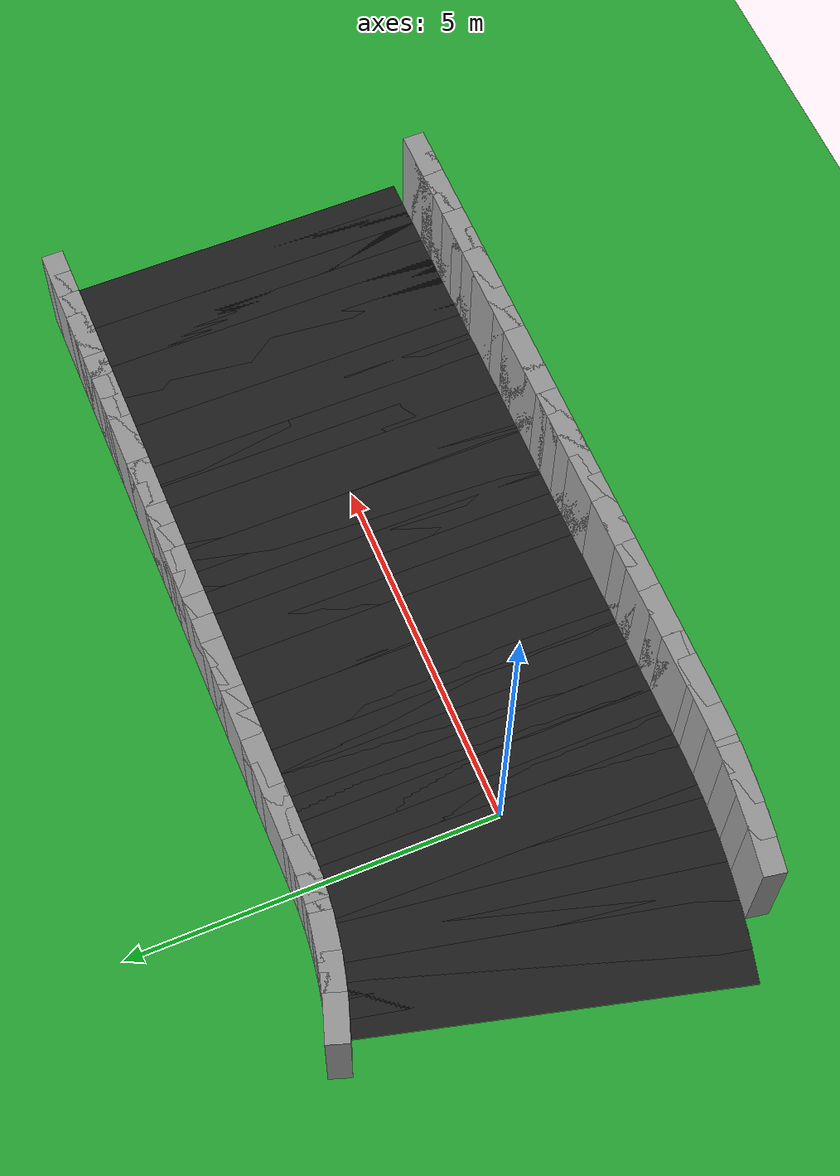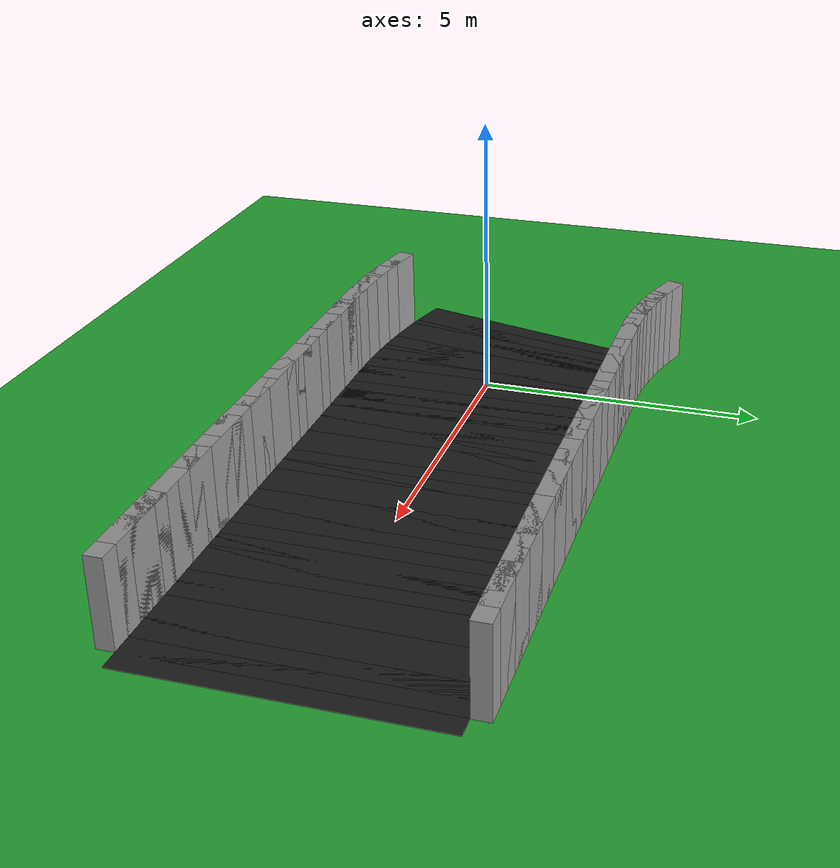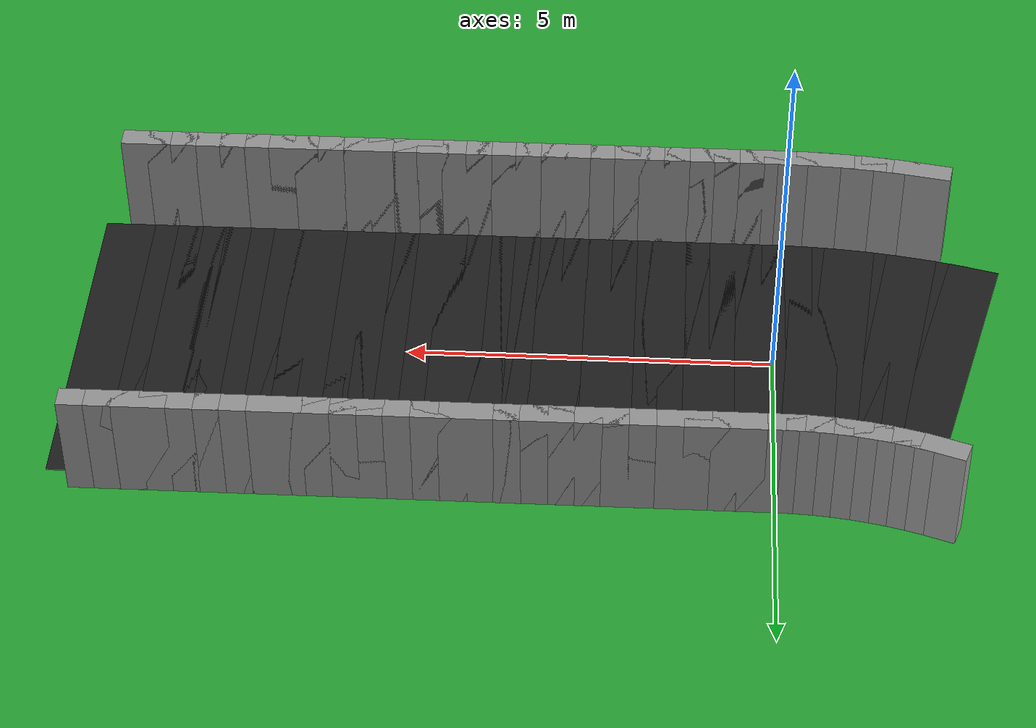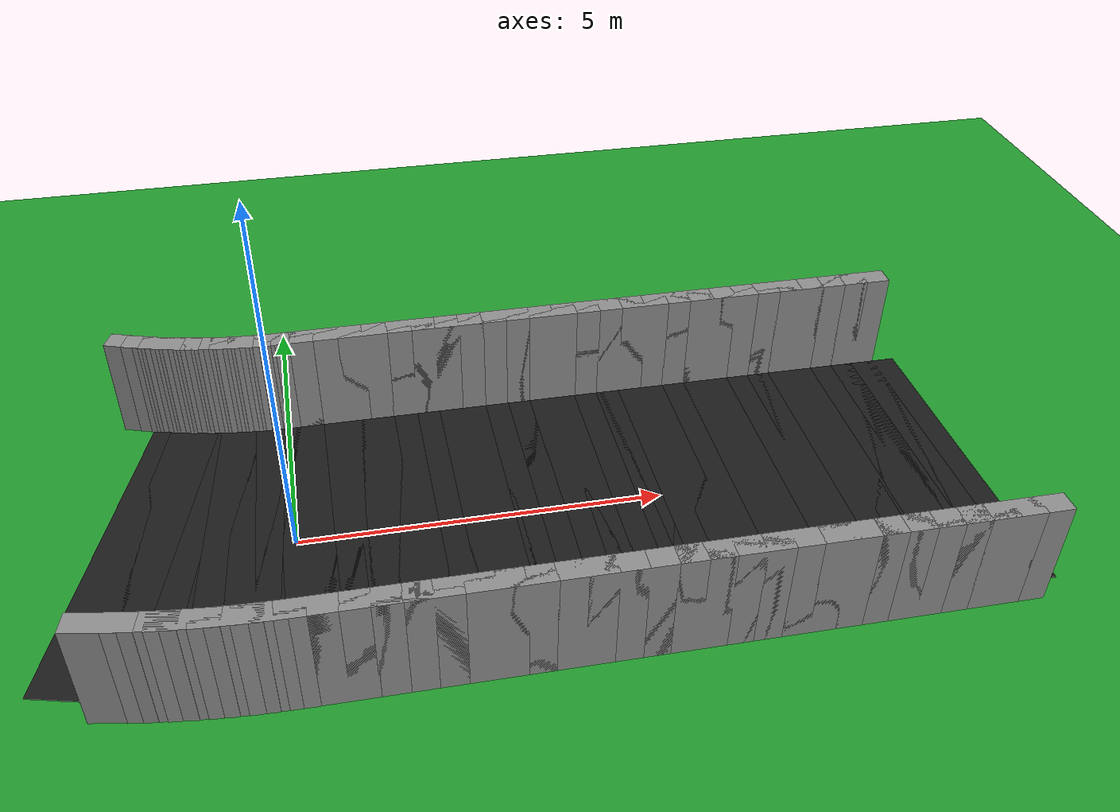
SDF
<sdf version="1.6">
 <world name="loop_stadium">
  <include><uri>model://sun</uri></include>
  <model name="ground_plane">
   <static>true</static>
   <link name="link">
    <collision name="collision">
     <surface><friction><ode><mu>100</mu><mu2>50</mu2></ode></friction></surface>
     <geometry><plane><normal>0 0 1</normal><size>120 120</size></plane></geometry>
    </collision>
    <visual name="visual">
     <geometry><plane><normal>0 0 1</normal><size>120 120</size></plane></geometry>
     <material>
      <script><uri>file://media/materials/scripts/gazebo.material</uri><name>Gazebo/Green</name></script>
     </material>
    </visual>
   </link>
  </model>
  <model name="asphalt_0">
   <static>true</static>
   <pose>0.174 0.000 0.005 0 0 0.00000</pose>
   <link name="link">
    <visual name="visual">
     <geometry><box><size>0.708 5.000 0.010</size></box></geometry>
     <material>
      <script><uri>file://media/materials/scripts/gazebo.material</uri><name>Gazebo/Black</name></script>
     </material>
    </visual>
   </link>
  </model>
  <model name="curbL_0">
   <static>true</static>
   <pose>0.174 2.650 0.750 0 0 0.00000</pose>
   <link name="link">
    <collision name="collision"><geometry><box><size>0.708 0.300 1.500</size></box></geometry></collision>
    <visual name="visual">
     <geometry><box><size>0.708 0.300 1.500</size></box></geometry>
     <material>
      <script><uri>file://media/materials/scripts/gazebo.material</uri><name>Gazebo/Grey</name></script>
     </material>
    </visual>
   </link>
  </model>
  <model name="curbR_0">
   <static>true</static>
   <pose>0.174 -2.650 0.750 0 0 0.00000</pose>
   <link name="link">
    <collision name="collision"><geometry><box><size>0.708 0.300 1.500</size></box></geometry></collision>
    <visual name="visual">
     <geometry><box><size>0.708 0.300 1.500</size></box></geometry>
     <material>
      <script><uri>file://media/materials/scripts/gazebo.material</uri><name>Gazebo/Grey</name></script>
     </material>
    </visual>
   </link>
  </model>
  <model name="asphalt_1">
   <static>true</static>
   <pose>0.522 0.000 0.005 0 0 0.00000</pose>
   <link name="link">
    <visual name="visual">
     <geometry><box><size>0.708 5.000 0.010</size></box></geometry>
     <material>
      <script><uri>file://media/materials/scripts/gazebo.material</uri><name>Gazebo/Black</name></script>
     </material>
    </visual>
   </link>
  </model>
  <model name="curbL_1">
   <static>true</static>
   <pose>0.522 2.650 0.750 0 0 0.00000</pose>
   <link name="link">
    <collision name="collision"><geometry><box><size>0.708 0.300 1.500</size></box></geometry></collision>
    <visual name="visual">
     <geometry><box><size>0.708 0.300 1.500</size></box></geometry>
     <material>
      <script><uri>file://media/materials/scripts/gazebo.material</uri><name>Gazebo/Grey</name></script>
     </material>
    </visual>
   </link>
  </model>
  <model name="curbR_1">
   <static>true</static>
   <pose>0.522 -2.650 0.750 0 0 0.00000</pose>
   <link name="link">
    <collision name="collision"><geometry><box><size>0.708 0.300 1.500</size></box></geometry></collision>
    <visual name="visual">
     <geometry><box><size>0.708 0.300 1.500</size></box></geometry>
     <material>
      <script><uri>file://media/materials/scripts/gazebo.material</uri><name>Gazebo/Grey</name></script>
     </material>
    </visual>
   </link>
  </model>
  <model name="asphalt_2">
   <static>true</static>
   <pose>0.870 0.000 0.005 0 0 0.00000</pose>
   <link name="link">
    <visual name="visual">
     <geometry><box><size>0.708 5.000 0.010</size></box></geometry>
     <material>
      <script><uri>file://media/materials/scripts/gazebo.material</uri><name>Gazebo/Black</name></script>
     </material>
    </visual>
   </link>
  </model>
  <model name="curbL_2">
   <static>true</static>
   <pose>0.870 2.650 0.750 0 0 0.00000</pose>
   <link name="link">
    <collision name="collision"><geometry><box><size>0.708 0.300 1.500</size></box></geometry></collision>
    <visual name="visual">
     <geometry><box><size>0.708 0.300 1.500</size></box></geometry>
     <material>
      <script><uri>file://media/materials/scripts/gazebo.material</uri><name>Gazebo/Grey</name></script>
     </material>
    </visual>
   </link>
  </model>
  <model name="curbR_2">
   <static>true</static>
   <pose>0.870 -2.650 0.750 0 0 0.00000</pose>
   <link name="link">
    <collision name="collision"><geometry><box><size>0.708 0.300 1.500</size></box></geometry></collision>
    <visual name="visual">
     <geometry><box><size>0.708 0.300 1.500</size></box></geometry>
     <material>
      <script><uri>file://media/materials/scripts/gazebo.material</uri><name>Gazebo/Grey</name></script>
     </material>
    </visual>
   </link>
  </model>
  <model name="asphalt_3">
   <static>true</static>
   <pose>1.217 0.000 0.005 0 0 0.00000</pose>
   <link name="link">
    <visual name="visual">
     <geometry><box><size>0.708 5.000 0.010</size></box></geometry>
     <material>
      <script><uri>file://media/materials/scripts/gazebo.material</uri><name>Gazebo/Black</name></script>
     </material>
    </visual>
   </link>
  </model>
  <model name="curbL_3">
   <static>true</static>
   <pose>1.217 2.650 0.750 0 0 0.00000</pose>
   <link name="link">
    <collision name="collision"><geometry><box><size>0.708 0.300 1.500</size></box></geometry></collision>
    <visual name="visual">
     <geometry><box><size>0.708 0.300 1.500</size></box></geometry>
     <material>
      <script><uri>file://media/materials/scripts/gazebo.material</uri><name>Gazebo/Grey</name></script>
     </material>
    </visual>
   </link>
  </model>
  <model name="curbR_3">
   <static>true</static>
   <pose>1.217 -2.650 0.750 0 0 0.00000</pose>
   <link name="link">
    <collision name="collision"><geometry><box><size>0.708 0.300 1.500</size></box></geometry></collision>
    <visual name="visual">
     <geometry><box><size>0.708 0.300 1.500</size></box></geometry>
     <material>
      <script><uri>file://media/materials/scripts/gazebo.material</uri><name>Gazebo/Grey</name></script>
     </material>
    </visual>
   </link>
  </model>
  <model name="asphalt_4">
   <static>true</static>
   <pose>1.565 0.000 0.005 0 0 0.00000</pose>
   <link name="link">
    <visual name="visual">
     <geometry><box><size>0.708 5.000 0.010</size></box></geometry>
     <material>
      <script><uri>file://media/materials/scripts/gazebo.material</uri><name>Gazebo/Black</name></script>
     </material>
    </visual>
   </link>
  </model>
  <model name="curbL_4">
   <static>true</static>
   <pose>1.565 2.650 0.750 0 0 0.00000</pose>
   <link name="link">
    <collision name="collision"><geometry><box><size>0.708 0.300 1.500</size></box></geometry></collision>
    <visual name="visual">
     <geometry><box><size>0.708 0.300 1.500</size></box></geometry>
     <material>
      <script><uri>file://media/materials/scripts/gazebo.material</uri><name>Gazebo/Grey</name></script>
     </material>
    </visual>
   </link>
  </model>
  <model name="curbR_4">
   <static>true</static>
   <pose>1.565 -2.650 0.750 0 0 0.00000</pose>
   <link name="link">
    <collision name="collision"><geometry><box><size>0.708 0.300 1.500</size></box></geometry></collision>
    <visual name="visual">
     <geometry><box><size>0.708 0.300 1.500</size></box></geometry>
     <material>
      <script><uri>file://media/materials/scripts/gazebo.material</uri><name>Gazebo/Grey</name></script>
     </material>
    </visual>
   </link>
  </model>
  <model name="asphalt_5">
   <static>true</static>
   <pose>1.913 0.000 0.005 0 0 0.00000</pose>
   <link name="link">
    <visual name="visual">
     <geometry><box><size>0.708 5.000 0.010</size></box></geometry>
     <material>
      <script><uri>file://media/materials/scripts/gazebo.material</uri><name>Gazebo/Black</name></script>
     </material>
    </visual>
   </link>
  </model>
  <model name="curbL_5">
   <static>true</static>
   <pose>1.913 2.650 0.750 0 0 0.00000</pose>
   <link name="link">
    <collision name="collision"><geometry><box><size>0.708 0.300 1.500</size></box></geometry></collision>
    <visual name="visual">
     <geometry><box><size>0.708 0.300 1.500</size></box></geometry>
     <material>
      <script><uri>file://media/materials/scripts/gazebo.material</uri><name>Gazebo/Grey</name></script>
     </material>
    </visual>
   </link>
  </model>
  <model name="curbR_5">
   <static>true</static>
   <pose>1.913 -2.650 0.750 0 0 0.00000</pose>
   <link name="link">
    <collision name="collision"><geometry><box><size>0.708 0.300 1.500</size></box></geometry></collision>
    <visual name="visual">
     <geometry><box><size>0.708 0.300 1.500</size></box></geometry>
     <material>
      <script><uri>file://media/materials/scripts/gazebo.material</uri><name>Gazebo/Grey</name></script>
     </material>
    </visual>
   </link>
  </model>
  <model name="asphalt_6">
   <static>true</static>
   <pose>2.261 0.000 0.005 0 0 0.00000</pose>
   <link name="link">
    <visual name="visual">
     <geometry><box><size>0.708 5.000 0.010</size></box></geometry>
     <material>
      <script><uri>file://media/materials/scripts/gazebo.material</uri><name>Gazebo/Black</name></script>
     </material>
    </visual>
   </link>
  </model>
  <model name="curbL_6">
   <static>true</static>
   <pose>2.261 2.650 0.750 0 0 0.00000</pose>
   <link name="link">
    <collision name="collision"><geometry><box><size>0.708 0.300 1.500</size></box></geometry></collision>
    <visual name="visual">
     <geometry><box><size>0.708 0.300 1.500</size></box></geometry>
     <material>
      <script><uri>file://media/materials/scripts/gazebo.material</uri><name>Gazebo/Grey</name></script>
     </material>
    </visual>
   </link>
  </model>
  <model name="curbR_6">
   <static>true</static>
   <pose>2.261 -2.650 0.750 0 0 0.00000</pose>
   <link name="link">
    <collision name="collision"><geometry><box><size>0.708 0.300 1.500</size></box></geometry></collision>
    <visual name="visual">
     <geometry><box><size>0.708 0.300 1.500</size></box></geometry>
     <material>
      <script><uri>file://media/materials/scripts/gazebo.material</uri><name>Gazebo/Grey</name></script>
     </material>
    </visual>
   </link>
  </model>
  <model name="asphalt_7">
   <static>true</static>
   <pose>2.609 0.000 0.005 0 0 0.00000</pose>
   <link name="link">
    <visual name="visual">
     <geometry><box><size>0.708 5.000 0.010</size></box></geometry>
     <material>
      <script><uri>file://media/materials/scripts/gazebo.material</uri><name>Gazebo/Black</name></script>
     </material>
    </visual>
   </link>
  </model>
  <model name="curbL_7">
   <static>true</static>
   <pose>2.609 2.650 0.750 0 0 0.00000</pose>
   <link name="link">
    <collision name="collision"><geometry><box><size>0.708 0.300 1.500</size></box></geometry></collision>
    <visual name="visual">
     <geometry><box><size>0.708 0.300 1.500</size></box></geometry>
     <material>
      <script><uri>file://media/materials/scripts/gazebo.material</uri><name>Gazebo/Grey</name></script>
     </material>
    </visual>
   </link>
  </model>
  <model name="curbR_7">
   <static>true</static>
   <pose>2.609 -2.650 0.750 0 0 0.00000</pose>
   <link name="link">
    <collision name="collision"><geometry><box><size>0.708 0.300 1.500</size></box></geometry></collision>
    <visual name="visual">
     <geometry><box><size>0.708 0.300 1.500</size></box></geometry>
     <material>
      <script><uri>file://media/materials/scripts/gazebo.material</uri><name>Gazebo/Grey</name></script>
     </material>
    </visual>
   </link>
  </model>
  <model name="asphalt_8">
   <static>true</static>
   <pose>2.957 0.000 0.005 0 0 0.00000</pose>
   <link name="link">
    <visual name="visual">
     <geometry><box><size>0.708 5.000 0.010</size></box></geometry>
     <material>
      <script><uri>file://media/materials/scripts/gazebo.material</uri><name>Gazebo/Black</name></script>
     </material>
    </visual>
   </link>
  </model>
  <model name="curbL_8">
   <static>true</static>
   <pose>2.957 2.650 0.750 0 0 0.00000</pose>
   <link name="link">
    <collision name="collision"><geometry><box><size>0.708 0.300 1.500</size></box></geometry></collision>
    <visual name="visual">
     <geometry><box><size>0.708 0.300 1.500</size></box></geometry>
     <material>
      <script><uri>file://media/materials/scripts/gazebo.material</uri><name>Gazebo/Grey</name></script>
     </material>
    </visual>
   </link>
  </model>
  <model name="curbR_8">
   <static>true</static>
   <pose>2.957 -2.650 0.750 0 0 0.00000</pose>
   <link name="link">
    <collision name="collision"><geometry><box><size>0.708 0.300 1.500</size></box></geometry></collision>
    <visual name="visual">
     <geometry><box><size>0.708 0.300 1.500</size></box></geometry>
     <material>
      <script><uri>file://media/materials/scripts/gazebo.material</uri><name>Gazebo/Grey</name></script>
     </material>
    </visual>
   </link>
  </model>
  <model name="asphalt_9">
   <static>true</static>
   <pose>3.304 0.000 0.005 0 0 0.00000</pose>
   <link name="link">
    <visual name="visual">
     <geometry><box><size>0.708 5.000 0.010</size></box></geometry>
     <material>
      <script><uri>file://media/materials/scripts/gazebo.material</uri><name>Gazebo/Black</name></script>
     </material>
    </visual>
   </link>
  </model>
  <model name="curbL_9">
   <static>true</static>
   <pose>3.304 2.650 0.750 0 0 0.00000</pose>
   <link name="link">
    <collision name="collision"><geometry><box><size>0.708 0.300 1.500</size></box></geometry></collision>
    <visual name="visual">
     <geometry><box><size>0.708 0.300 1.500</size></box></geometry>
     <material>
      <script><uri>file://media/materials/scripts/gazebo.material</uri><name>Gazebo/Grey</name></script>
     </material>
    </visual>
   </link>
  </model>
  <model name="curbR_9">
   <static>true</static>
   <pose>3.304 -2.650 0.750 0 0 0.00000</pose>
   <link name="link">
    <collision name="collision"><geometry><box><size>0.708 0.300 1.500</size></box></geometry></collision>
    <visual name="visual">
     <geometry><box><size>0.708 0.300 1.500</size></box></geometry>
     <material>
      <script><uri>file://media/materials/scripts/gazebo.material</uri><name>Gazebo/Grey</name></script>
     </material>
    </visual>
   </link>
  </model>
  <model name="asphalt_10">
   <static>true</static>
   <pose>3.652 0.000 0.005 0 0 0.00000</pose>
   <link name="link">
    <visual name="visual">
     <geometry><box><size>0.708 5.000 0.010</size></box></geometry>
     <material>
      <script><uri>file://media/materials/scripts/gazebo.material</uri><name>Gazebo/Black</name></script>
     </material>
    </visual>
   </link>
  </model>
  <model name="curbL_10">
   <static>true</static>
   <pose>3.652 2.650 0.750 0 0 0.00000</pose>
   <link name="link">
    <collision name="collision"><geometry><box><size>0.708 0.300 1.500</size></box></geometry></collision>
    <visual name="visual">
     <geometry><box><size>0.708 0.300 1.500</size></box></geometry>
     <material>
      <script><uri>file://media/materials/scripts/gazebo.material</uri><name>Gazebo/Grey</name></script>
     </material>
    </visual>
   </link>
  </model>
  <model name="curbR_10">
   <static>true</static>
   <pose>3.652 -2.650 0.750 0 0 0.00000</pose>
   <link name="link">
    <collision name="collision"><geometry><box><size>0.708 0.300 1.500</size></box></geometry></collision>
    <visual name="visual">
     <geometry><box><size>0.708 0.300 1.500</size></box></geometry>
     <material>
      <script><uri>file://media/materials/scripts/gazebo.material</uri><name>Gazebo/Grey</name></script>
     </material>
    </visual>
   </link>
  </model>
  <model name="asphalt_11">
   <static>true</static>
   <pose>4.000 0.000 0.005 0 0 0.00000</pose>
   <link name="link">
    <visual name="visual">
     <geometry><box><size>0.708 5.000 0.010</size></box></geometry>
     <material>
      <script><uri>file://media/materials/scripts/gazebo.material</uri><name>Gazebo/Black</name></script>
     </material>
    </visual>
   </link>
  </model>
  <model name="curbL_11">
   <static>true</static>
   <pose>4.000 2.650 0.750 0 0 0.00000</pose>
   <link name="link">
    <collision name="collision"><geometry><box><size>0.708 0.300 1.500</size></box></geometry></collision>
    <visual name="visual">
     <geometry><box><size>0.708 0.300 1.500</size></box></geometry>
     <material>
      <script><uri>file://media/materials/scripts/gazebo.material</uri><name>Gazebo/Grey</name></script>
     </material>
    </visual>
   </link>
  </model>
  <model name="curbR_11">
   <static>true</static>
   <pose>4.000 -2.650 0.750 0 0 0.00000</pose>
   <link name="link">
    <collision name="collision"><geometry><box><size>0.708 0.300 1.500</size></box></geometry></collision>
    <visual name="visual">
     <geometry><box><size>0.708 0.300 1.500</size></box></geometry>
     <material>
      <script><uri>file://media/materials/scripts/gazebo.material</uri><name>Gazebo/Grey</name></script>
     </material>
    </visual>
   </link>
  </model>
  <model name="asphalt_12">
   <static>true</static>
   <pose>4.348 0.000 0.005 0 0 0.00000</pose>
   <link name="link">
    <visual name="visual">
     <geometry><box><size>0.708 5.000 0.010</size></box></geometry>
     <material>
      <script><uri>file://media/materials/scripts/gazebo.material</uri><name>Gazebo/Black</name></script>
     </material>
    </visual>
   </link>
  </model>
  <model name="curbL_12">
   <static>true</static>
   <pose>4.348 2.650 0.750 0 0 0.00000</pose>
   <link name="link">
    <collision name="collision"><geometry><box><size>0.708 0.300 1.500</size></box></geometry></collision>
    <visual name="visual">
     <geometry><box><size>0.708 0.300 1.500</size></box></geometry>
     <material>
      <script><uri>file://media/materials/scripts/gazebo.material</uri><name>Gazebo/Grey</name></script>
     </material>
    </visual>
   </link>
  </model>
  <model name="curbR_12">
   <static>true</static>
   <pose>4.348 -2.650 0.750 0 0 0.00000</pose>
   <link name="link">
    <collision name="collision"><geometry><box><size>0.708 0.300 1.500</size></box></geometry></collision>
    <visual name="visual">
     <geometry><box><size>0.708 0.300 1.500</size></box></geometry>
     <material>
      <script><uri>file://media/materials/scripts/gazebo.material</uri><name>Gazebo/Grey</name></script>
     </material>
    </visual>
   </link>
  </model>
  <model name="asphalt_13">
   <static>true</static>
   <pose>4.696 0.000 0.005 0 0 0.00000</pose>
   <link name="link">
    <visual name="visual">
     <geometry><box><size>0.708 5.000 0.010</size></box></geometry>
     <material>
      <script><uri>file://media/materials/scripts/gazebo.material</uri><name>Gazebo/Black</name></script>
     </material>
    </visual>
   </link>
  </model>
  <model name="curbL_13">
   <static>true</static>
   <pose>4.696 2.650 0.750 0 0 0.00000</pose>
   <link name="link">
    <collision name="collision"><geometry><box><size>0.708 0.300 1.500</size></box></geometry></collision>
    <visual name="visual">
     <geometry><box><size>0.708 0.300 1.500</size></box></geometry>
     <material>
      <script><uri>file://media/materials/scripts/gazebo.material</uri><name>Gazebo/Grey</name></script>
     </material>
    </visual>
   </link>
  </model>
  <model name="curbR_13">
   <static>true</static>
   <pose>4.696 -2.650 0.750 0 0 0.00000</pose>
   <link name="link">
    <collision name="collision"><geometry><box><size>0.708 0.300 1.500</size></box></geometry></collision>
    <visual name="visual">
     <geometry><box><size>0.708 0.300 1.500</size></box></geometry>
     <material>
      <script><uri>file://media/materials/scripts/gazebo.material</uri><name>Gazebo/Grey</name></script>
     </material>
    </visual>
   </link>
  </model>
  <model name="asphalt_14">
   <static>true</static>
   <pose>5.043 0.000 0.005 0 0 0.00000</pose>
   <link name="link">
    <visual name="visual">
     <geometry><box><size>0.708 5.000 0.010</size></box></geometry>
     <material>
      <script><uri>file://media/materials/scripts/gazebo.material</uri><name>Gazebo/Black</name></script>
     </material>
    </visual>
   </link>
  </model>
  <model name="curbL_14">
   <static>true</static>
   <pose>5.043 2.650 0.750 0 0 0.00000</pose>
   <link name="link">
    <collision name="collision"><geometry><box><size>0.708 0.300 1.500</size></box></geometry></collision>
    <visual name="visual">
     <geometry><box><size>0.708 0.300 1.500</size></box></geometry>
     <material>
      <script><uri>file://media/materials/scripts/gazebo.material</uri><name>Gazebo/Grey</name></script>
     </material>
    </visual>
   </link>
  </model>
  <model name="curbR_14">
   <static>true</static>
   <pose>5.043 -2.650 0.750 0 0 0.00000</pose>
   <link name="link">
    <collision name="collision"><geometry><box><size>0.708 0.300 1.500</size></box></geometry></collision>
    <visual name="visual">
     <geometry><box><size>0.708 0.300 1.500</size></box></geometry>
     <material>
      <script><uri>file://media/materials/scripts/gazebo.material</uri><name>Gazebo/Grey</name></script>
     </material>
    </visual>
   </link>
  </model>
  <model name="asphalt_15">
   <static>true</static>
   <pose>5.391 0.000 0.005 0 0 0.00000</pose>
   <link name="link">
    <visual name="visual">
     <geometry><box><size>0.708 5.000 0.010</size></box></geometry>
     <material>
      <script><uri>file://media/materials/scripts/gazebo.material</uri><name>Gazebo/Black</name></script>
     </material>
    </visual>
   </link>
  </model>
  <model name="curbL_15">
   <static>true</static>
   <pose>5.391 2.650 0.750 0 0 0.00000</pose>
   <link name="link">
    <collision name="collision"><geometry><box><size>0.708 0.300 1.500</size></box></geometry></collision>
    <visual name="visual">
     <geometry><box><size>0.708 0.300 1.500</size></box></geometry>
     <material>
      <script><uri>file://media/materials/scripts/gazebo.material</uri><name>Gazebo/Grey</name></script>
     </material>
    </visual>
   </link>
  </model>
  <model name="curbR_15">
   <static>true</static>
   <pose>5.391 -2.650 0.750 0 0 0.00000</pose>
   <link name="link">
    <collision name="collision"><geometry><box><size>0.708 0.300 1.500</size></box></geometry></collision>
    <visual name="visual">
     <geometry><box><size>0.708 0.300 1.500</size></box></geometry>
     <material>
      <script><uri>file://media/materials/scripts/gazebo.material</uri><name>Gazebo/Grey</name></script>
     </material>
    </visual>
   </link>
  </model>
  <model name="asphalt_16">
   <static>true</static>
   <pose>5.739 0.000 0.005 0 0 0.00000</pose>
   <link name="link">
    <visual name="visual">
     <geometry><box><size>0.708 5.000 0.010</size></box></geometry>
     <material>
      <script><uri>file://media/materials/scripts/gazebo.material</uri><name>Gazebo/Black</name></script>
     </material>
    </visual>
   </link>
  </model>
  <model name="curbL_16">
   <static>true</static>
   <pose>5.739 2.650 0.750 0 0 0.00000</pose>
   <link name="link">
    <collision name="collision"><geometry><box><size>0.708 0.300 1.500</size></box></geometry></collision>
    <visual name="visual">
     <geometry><box><size>0.708 0.300 1.500</size></box></geometry>
     <material>
      <script><uri>file://media/materials/scripts/gazebo.material</uri><name>Gazebo/Grey</name></script>
     </material>
    </visual>
   </link>
  </model>
  <model name="curbR_16">
   <static>true</static>
   <pose>5.739 -2.650 0.750 0 0 0.00000</pose>
   <link name="link">
    <collision name="collision"><geometry><box><size>0.708 0.300 1.500</size></box></geometry></collision>
    <visual name="visual">
     <geometry><box><size>0.708 0.300 1.500</size></box></geometry>
     <material>
      <script><uri>file://media/materials/scripts/gazebo.material</uri><name>Gazebo/Grey</name></script>
     </material>
    </visual>
   </link>
  </model>
  <model name="asphalt_17">
   <static>true</static>
   <pose>6.087 0.000 0.005 0 0 0.00000</pose>
   <link name="link">
    <visual name="visual">
     <geometry><box><size>0.708 5.000 0.010</size></box></geometry>
     <material>
      <script><uri>file://media/materials/scripts/gazebo.material</uri><name>Gazebo/Black</name></script>
     </material>
    </visual>
   </link>
  </model>
  <model name="curbL_17">
   <static>true</static>
   <pose>6.087 2.650 0.750 0 0 0.00000</pose>
   <link name="link">
    <collision name="collision"><geometry><box><size>0.708 0.300 1.500</size></box></geometry></collision>
    <visual name="visual">
     <geometry><box><size>0.708 0.300 1.500</size></box></geometry>
     <material>
      <script><uri>file://media/materials/scripts/gazebo.material</uri><name>Gazebo/Grey</name></script>
     </material>
    </visual>
   </link>
  </model>
  <model name="curbR_17">
   <static>true</static>
   <pose>6.087 -2.650 0.750 0 0 0.00000</pose>
   <link name="link">
    <collision name="collision"><geometry><box><size>0.708 0.300 1.500</size></box></geometry></collision>
    <visual name="visual">
     <geometry><box><size>0.708 0.300 1.500</size></box></geometry>
     <material>
      <script><uri>file://media/materials/scripts/gazebo.material</uri><name>Gazebo/Grey</name></script>
     </material>
    </visual>
   </link>
  </model>
  <model name="asphalt_18">
   <static>true</static>
   <pose>6.435 0.000 0.005 0 0 0.00000</pose>
   <link name="link">
    <visual name="visual">
     <geometry><box><size>0.708 5.000 0.010</size></box></geometry>
     <material>
      <script><uri>file://media/materials/scripts/gazebo.material</uri><name>Gazebo/Black</name></script>
     </material>
    </visual>
   </link>
  </model>
  <model name="curbL_18">
   <static>true</static>
   <pose>6.435 2.650 0.750 0 0 0.00000</pose>
   <link name="link">
    <collision name="collision"><geometry><box><size>0.708 0.300 1.500</size></box></geometry></collision>
    <visual name="visual">
     <geometry><box><size>0.708 0.300 1.500</size></box></geometry>
     <material>
      <script><uri>file://media/materials/scripts/gazebo.material</uri><name>Gazebo/Grey</name></script>
     </material>
    </visual>
   </link>
  </model>
  <model name="curbR_18">
   <static>true</static>
   <pose>6.435 -2.650 0.750 0 0 0.00000</pose>
   <link name="link">
    <collision name="collision"><geometry><box><size>0.708 0.300 1.500</size></box></geometry></collision>
    <visual name="visual">
     <geometry><box><size>0.708 0.300 1.500</size></box></geometry>
     <material>
      <script><uri>file://media/materials/scripts/gazebo.material</uri><name>Gazebo/Grey</name></script>
     </material>
    </visual>
   </link>
  </model>
  <model name="asphalt_19">
   <static>true</static>
   <pose>6.783 0.000 0.005 0 0 0.00000</pose>
   <link name="link">
    <visual name="visual">
     <geometry><box><size>0.708 5.000 0.010</size></box></geometry>
     <material>
      <script><uri>file://media/materials/scripts/gazebo.material</uri><name>Gazebo/Black</name></script>
     </material>
    </visual>
   </link>
  </model>
  <model name="curbL_19">
   <static>true</static>
   <pose>6.783 2.650 0.750 0 0 0.00000</pose>
   <link name="link">
    <collision name="collision"><geometry><box><size>0.708 0.300 1.500</size></box></geometry></collision>
    <visual name="visual">
     <geometry><box><size>0.708 0.300 1.500</size></box></geometry>
     <material>
      <script><uri>file://media/materials/scripts/gazebo.material</uri><name>Gazebo/Grey</name></script>
     </material>
    </visual>
   </link>
  </model>
  <model name="curbR_19">
   <static>true</static>
   <pose>6.783 -2.650 0.750 0 0 0.00000</pose>
   <link name="link">
    <collision name="collision"><geometry><box><size>0.708 0.300 1.500</size></box></geometry></collision>
    <visual name="visual">
     <geometry><box><size>0.708 0.300 1.500</size></box></geometry>
     <material>
      <script><uri>file://media/materials/scripts/gazebo.material</uri><name>Gazebo/Grey</name></script>
     </material>
    </visual>
   </link>
  </model>
  <model name="asphalt_20">
   <static>true</static>
   <pose>7.130 0.000 0.005 0 0 0.00000</pose>
   <link name="link">
    <visual name="visual">
     <geometry><box><size>0.708 5.000 0.010</size></box></geometry>
     <material>
      <script><uri>file://media/materials/scripts/gazebo.material</uri><name>Gazebo/Black</name></script>
     </material>
    </visual>
   </link>
  </model>
  <model name="curbL_20">
   <static>true</static>
   <pose>7.130 2.650 0.750 0 0 0.00000</pose>
   <link name="link">
    <collision name="collision"><geometry><box><size>0.708 0.300 1.500</size></box></geometry></collision>
    <visual name="visual">
     <geometry><box><size>0.708 0.300 1.500</size></box></geometry>
     <material>
      <script><uri>file://media/materials/scripts/gazebo.material</uri><name>Gazebo/Grey</name></script>
     </material>
    </visual>
   </link>
  </model>
  <model name="curbR_20">
   <static>true</static>
   <pose>7.130 -2.650 0.750 0 0 0.00000</pose>
   <link name="link">
    <collision name="collision"><geometry><box><size>0.708 0.300 1.500</size></box></geometry></collision>
    <visual name="visual">
     <geometry><box><size>0.708 0.300 1.500</size></box></geometry>
     <material>
      <script><uri>file://media/materials/scripts/gazebo.material</uri><name>Gazebo/Grey</name></script>
     </material>
    </visual>
   </link>
  </model>
  <model name="asphalt_21">
   <static>true</static>
   <pose>7.478 0.000 0.005 0 0 0.00000</pose>
   <link name="link">
    <visual name="visual">
     <geometry><box><size>0.708 5.000 0.010</size></box></geometry>
     <material>
      <script><uri>file://media/materials/scripts/gazebo.material</uri><name>Gazebo/Black</name></script>
     </material>
    </visual>
   </link>
  </model>
  <model name="curbL_21">
   <static>true</static>
   <pose>7.478 2.650 0.750 0 0 0.00000</pose>
   <link name="link">
    <collision name="collision"><geometry><box><size>0.708 0.300 1.500</size></box></geometry></collision>
    <visual name="visual">
     <geometry><box><size>0.708 0.300 1.500</size></box></geometry>
     <material>
      <script><uri>file://media/materials/scripts/gazebo.material</uri><name>Gazebo/Grey</name></script>
     </material>
    </visual>
   </link>
  </model>
  <model name="curbR_21">
   <static>true</static>
   <pose>7.478 -2.650 0.750 0 0 0.00000</pose>
   <link name="link">
    <collision name="collision"><geometry><box><size>0.708 0.300 1.500</size></box></geometry></collision>
    <visual name="visual">
     <geometry><box><size>0.708 0.300 1.500</size></box></geometry>
     <material>
      <script><uri>file://media/materials/scripts/gazebo.material</uri><name>Gazebo/Grey</name></script>
     </material>
    </visual>
   </link>
  </model>
  <model name="asphalt_22">
   <static>true</static>
   <pose>7.826 0.000 0.005 0 0 0.00000</pose>
   <link name="link">
    <visual name="visual">
     <geometry><box><size>0.708 5.000 0.010</size></box></geometry>
     <material>
      <script><uri>file://media/materials/scripts/gazebo.material</uri><name>Gazebo/Black</name></script>
     </material>
    </visual>
   </link>
  </model>
  <model name="curbL_22">
   <static>true</static>
   <pose>7.826 2.650 0.750 0 0 0.00000</pose>
   <link name="link">
    <collision name="collision"><geometry><box><size>0.708 0.300 1.500</size></box></geometry></collision>
    <visual name="visual">
     <geometry><box><size>0.708 0.300 1.500</size></box></geometry>
     <material>
      <script><uri>file://media/materials/scripts/gazebo.material</uri><name>Gazebo/Grey</name></script>
     </material>
    </visual>
   </link>
  </model>
  <model name="curbR_22">
   <static>true</static>
   <pose>7.826 -2.650 0.750 0 0 0.00000</pose>
   <link name="link">
    <collision name="collision"><geometry><box><size>0.708 0.300 1.500</size></box></geometry></collision>
    <visual name="visual">
     <geometry><box><size>0.708 0.300 1.500</size></box></geometry>
     <material>
      <script><uri>file://media/materials/scripts/gazebo.material</uri><name>Gazebo/Grey</name></script>
     </material>
    </visual>
   </link>
  </model>
  <model name="asphalt_23">
   <static>true</static>
   <pose>8.174 0.000 0.005 0 0 0.00000</pose>
   <link name="link">
    <visual name="visual">
     <geometry><box><size>0.708 5.000 0.010</size></box></geometry>
     <material>
      <script><uri>file://media/materials/scripts/gazebo.material</uri><name>Gazebo/Black</name></script>
     </material>
    </visual>
   </link>
  </model>
  <model name="curbL_23">
   <static>true</static>
   <pose>8.174 2.650 0.750 0 0 0.00000</pose>
   <link name="link">
    <collision name="collision"><geometry><box><size>0.708 0.300 1.500</size></box></geometry></collision>
    <visual name="visual">
     <geometry><box><size>0.708 0.300 1.500</size></box></geometry>
     <material>
      <script><uri>file://media/materials/scripts/gazebo.material</uri><name>Gazebo/Grey</name></script>
     </material>
    </visual>
   </link>
  </model>
  <model name="curbR_23">
   <static>true</static>
   <pose>8.174 -2.650 0.750 0 0 0.00000</pose>
   <link name="link">
    <collision name="collision"><geometry><box><size>0.708 0.300 1.500</size></box></geometry></collision>
    <visual name="visual">
     <geometry><box><size>0.708 0.300 1.500</size></box></geometry>
     <material>
      <script><uri>file://media/materials/scripts/gazebo.material</uri><name>Gazebo/Grey</name></script>
     </material>
    </visual>
   </link>
  </model>
  <model name="asphalt_24">
   <static>true</static>
   <pose>8.522 0.000 0.005 0 0 0.00000</pose>
   <link name="link">
    <visual name="visual">
     <geometry><box><size>0.708 5.000 0.010</size></box></geometry>
     <material>
      <script><uri>file://media/materials/scripts/gazebo.material</uri><name>Gazebo/Black</name></script>
     </material>
    </visual>
   </link>
  </model>
  <model name="curbL_24">
   <static>true</static>
   <pose>8.522 2.650 0.750 0 0 0.00000</pose>
   <link name="link">
    <collision name="collision"><geometry><box><size>0.708 0.300 1.500</size></box></geometry></collision>
    <visual name="visual">
     <geometry><box><size>0.708 0.300 1.500</size></box></geometry>
     <material>
      <script><uri>file://media/materials/scripts/gazebo.material</uri><name>Gazebo/Grey</name></script>
     </material>
    </visual>
   </link>
  </model>
  <model name="curbR_24">
   <static>true</static>
   <pose>8.522 -2.650 0.750 0 0 0.00000</pose>
   <link name="link">
    <collision name="collision"><geometry><box><size>0.708 0.300 1.500</size></box></geometry></collision>
    <visual name="visual">
     <geometry><box><size>0.708 0.300 1.500</size></box></geometry>
     <material>
      <script><uri>file://media/materials/scripts/gazebo.material</uri><name>Gazebo/Grey</name></script>
     </material>
    </visual>
   </link>
  </model>
  <model name="asphalt_25">
   <static>true</static>
   <pose>8.870 0.000 0.005 0 0 0.00000</pose>
   <link name="link">
    <visual name="visual">
     <geometry><box><size>0.708 5.000 0.010</size></box></geometry>
     <material>
      <script><uri>file://media/materials/scripts/gazebo.material</uri><name>Gazebo/Black</name></script>
     </material>
    </visual>
   </link>
  </model>
  <model name="curbL_25">
   <static>true</static>
   <pose>8.870 2.650 0.750 0 0 0.00000</pose>
   <link name="link">
    <collision name="collision"><geometry><box><size>0.708 0.300 1.500</size></box></geometry></collision>
    <visual name="visual">
     <geometry><box><size>0.708 0.300 1.500</size></box></geometry>
     <material>
      <script><uri>file://media/materials/scripts/gazebo.material</uri><name>Gazebo/Grey</name></script>
     </material>
    </visual>
   </link>
  </model>
  <model name="curbR_25">
   <static>true</static>
   <pose>8.870 -2.650 0.750 0 0 0.00000</pose>
   <link name="link">
    <collision name="collision"><geometry><box><size>0.708 0.300 1.500</size></box></geometry></collision>
    <visual name="visual">
     <geometry><box><size>0.708 0.300 1.500</size></box></geometry>
     <material>
      <script><uri>file://media/materials/scripts/gazebo.material</uri><name>Gazebo/Grey</name></script>
     </material>
    </visual>
   </link>
  </model>
  <model name="asphalt_26">
   <static>true</static>
   <pose>9.217 0.000 0.005 0 0 0.00000</pose>
   <link name="link">
    <visual name="visual">
     <geometry><box><size>0.708 5.000 0.010</size></box></geometry>
     <material>
      <script><uri>file://media/materials/scripts/gazebo.material</uri><name>Gazebo/Black</name></script>
     </material>
    </visual>
   </link>
  </model>
  <model name="curbL_291">
   <static>true</static>
   <pose>-2.056 2.993 0.750 0 0 -0.32967</pose>
   <link name="link">
    <collision name="collision"><geometry><box><size>0.606 0.300 1.500</size></box></geometry></collision>
    <visual name="visual">
     <geometry><box><size>0.606 0.300 1.500</size></box></geometry>
     <material>
      <script><uri>file://media/materials/scripts/gazebo.material</uri><name>Gazebo/Grey</name></script>
     </material>
    </visual>
   </link>
  </model>
  <model name="curbL_292">
   <static>true</static>
   <pose>-1.821 2.918 0.750 0 0 -0.29089</pose>
   <link name="link">
    <collision name="collision"><geometry><box><size>0.606 0.300 1.500</size></box></geometry></collision>
    <visual name="visual">
     <geometry><box><size>0.606 0.300 1.500</size></box></geometry>
     <material>
      <script><uri>file://media/materials/scripts/gazebo.material</uri><name>Gazebo/Grey</name></script>
     </material>
    </visual>
   </link>
  </model>
  <model name="asphalt_293">
   <static>true</static>
   <pose>-2.245 0.286 0.005 0 0 -0.25210</pose>
   <link name="link">
    <visual name="visual">
     <geometry><box><size>0.709 5.000 0.010</size></box></geometry>
     <material>
      <script><uri>file://media/materials/scripts/gazebo.material</uri><name>Gazebo/Black</name></script>
     </material>
    </visual>
   </link>
  </model>
  <model name="curbL_293">
   <static>true</static>
   <pose>-1.584 2.852 0.750 0 0 -0.25210</pose>
   <link name="link">
    <collision name="collision"><geometry><box><size>0.606 0.300 1.500</size></box></geometry></collision>
    <visual name="visual">
     <geometry><box><size>0.606 0.300 1.500</size></box></geometry>
     <material>
      <script><uri>file://media/materials/scripts/gazebo.material</uri><name>Gazebo/Grey</name></script>
     </material>
    </visual>
   </link>
  </model>
  <model name="asphalt_294">
   <static>true</static>
   <pose>-1.905 0.206 0.005 0 0 -0.21332</pose>
   <link name="link">
    <visual name="visual">
     <geometry><box><size>0.709 5.000 0.010</size></box></geometry>
     <material>
      <script><uri>file://media/materials/scripts/gazebo.material</uri><name>Gazebo/Black</name></script>
     </material>
    </visual>
   </link>
  </model>
  <model name="curbL_294">
   <static>true</static>
   <pose>-1.344 2.795 0.750 0 0 -0.21332</pose>
   <link name="link">
    <collision name="collision"><geometry><box><size>0.606 0.300 1.500</size></box></geometry></collision>
    <visual name="visual">
     <geometry><box><size>0.606 0.300 1.500</size></box></geometry>
     <material>
      <script><uri>file://media/materials/scripts/gazebo.material</uri><name>Gazebo/Grey</name></script>
     </material>
    </visual>
   </link>
  </model>
  <model name="asphalt_295">
   <static>true</static>
   <pose>-1.563 0.138 0.005 0 0 -0.17453</pose>
   <link name="link">
    <visual name="visual">
     <geometry><box><size>0.709 5.000 0.010</size></box></geometry>
     <material>
      <script><uri>file://media/materials/scripts/gazebo.material</uri><name>Gazebo/Black</name></script>
     </material>
    </visual>
   </link>
  </model>
  <model name="curbL_295">
   <static>true</static>
   <pose>-1.103 2.748 0.750 0 0 -0.17453</pose>
   <link name="link">
    <collision name="collision"><geometry><box><size>0.606 0.300 1.500</size></box></geometry></collision>
    <visual name="visual">
     <geometry><box><size>0.606 0.300 1.500</size></box></geometry>
     <material>
      <script><uri>file://media/materials/scripts/gazebo.material</uri><name>Gazebo/Grey</name></script>
     </material>
    </visual>
   </link>
  </model>
  <model name="curbR_295">
   <static>true</static>
   <pose>-2.023 -2.471 0.750 0 0 -0.17453</pose>
   <link name="link">
    <collision name="collision"><geometry><box><size>0.812 0.300 1.500</size></box></geometry></collision>
    <visual name="visual">
     <geometry><box><size>0.812 0.300 1.500</size></box></geometry>
     <material>
      <script><uri>file://media/materials/scripts/gazebo.material</uri><name>Gazebo/Grey</name></script>
     </material>
    </visual>
   </link>
  </model>
  <model name="asphalt_296">
   <static>true</static>
   <pose>-1.218 0.084 0.005 0 0 -0.13575</pose>
   <link name="link">
    <visual name="visual">
     <geometry><box><size>0.709 5.000 0.010</size></box></geometry>
     <material>
      <script><uri>file://media/materials/scripts/gazebo.material</uri><name>Gazebo/Black</name></script>
     </material>
    </visual>
   </link>
  </model>
  <model name="curbL_296">
   <static>true</static>
   <pose>-0.859 2.710 0.750 0 0 -0.13575</pose>
   <link name="link">
    <collision name="collision"><geometry><box><size>0.606 0.300 1.500</size></box></geometry></collision>
    <visual name="visual">
     <geometry><box><size>0.606 0.300 1.500</size></box></geometry>
     <material>
      <script><uri>file://media/materials/scripts/gazebo.material</uri><name>Gazebo/Grey</name></script>
     </material>
    </visual>
   </link>
  </model>
  <model name="curbR_296">
   <static>true</static>
   <pose>-1.576 -2.541 0.750 0 0 -0.13575</pose>
   <link name="link">
    <collision name="collision"><geometry><box><size>0.812 0.300 1.500</size></box></geometry></collision>
    <visual name="visual">
     <geometry><box><size>0.812 0.300 1.500</size></box></geometry>
     <material>
      <script><uri>file://media/materials/scripts/gazebo.material</uri><name>Gazebo/Grey</name></script>
     </material>
    </visual>
   </link>
  </model>
  <model name="asphalt_297">
   <static>true</static>
   <pose>-0.871 0.044 0.005 0 0 -0.09696</pose>
   <link name="link">
    <visual name="visual">
     <geometry><box><size>0.709 5.000 0.010</size></box></geometry>
     <material>
      <script><uri>file://media/materials/scripts/gazebo.material</uri><name>Gazebo/Black</name></script>
     </material>
    </visual>
   </link>
  </model>
  <model name="curbL_297">
   <static>true</static>
   <pose>-0.615 2.681 0.750 0 0 -0.09696</pose>
   <link name="link">
    <collision name="collision"><geometry><box><size>0.606 0.300 1.500</size></box></geometry></collision>
    <visual name="visual">
     <geometry><box><size>0.606 0.300 1.500</size></box></geometry>
     <material>
      <script><uri>file://media/materials/scripts/gazebo.material</uri><name>Gazebo/Grey</name></script>
     </material>
    </visual>
   </link>
  </model>
  <model name="curbR_297">
   <static>true</static>
   <pose>-1.128 -2.593 0.750 0 0 -0.09696</pose>
   <link name="link">
    <collision name="collision"><geometry><box><size>0.812 0.300 1.500</size></box></geometry></collision>
    <visual name="visual">
     <geometry><box><size>0.812 0.300 1.500</size></box></geometry>
     <material>
      <script><uri>file://media/materials/scripts/gazebo.material</uri><name>Gazebo/Grey</name></script>
     </material>
    </visual>
   </link>
  </model>
  <model name="asphalt_298">
   <static>true</static>
   <pose>-0.523 0.017 0.005 0 0 -0.05818</pose>
   <link name="link">
    <visual name="visual">
     <geometry><box><size>0.709 5.000 0.010</size></box></geometry>
     <material>
      <script><uri>file://media/materials/scripts/gazebo.material</uri><name>Gazebo/Black</name></script>
     </material>
    </visual>
   </link>
  </model>
  <model name="curbL_298">
   <static>true</static>
   <pose>-0.369 2.662 0.750 0 0 -0.05818</pose>
   <link name="link">
    <collision name="collision"><geometry><box><size>0.606 0.300 1.500</size></box></geometry></collision>
    <visual name="visual">
     <geometry><box><size>0.606 0.300 1.500</size></box></geometry>
     <material>
      <script><uri>file://media/materials/scripts/gazebo.material</uri><name>Gazebo/Grey</name></script>
     </material>
    </visual>
   </link>
  </model>
  <model name="curbR_298">
   <static>true</static>
   <pose>-0.677 -2.628 0.750 0 0 -0.05818</pose>
   <link name="link">
    <collision name="collision"><geometry><box><size>0.812 0.300 1.500</size></box></geometry></collision>
    <visual name="visual">
     <geometry><box><size>0.812 0.300 1.500</size></box></geometry>
     <material>
      <script><uri>file://media/materials/scripts/gazebo.material</uri><name>Gazebo/Grey</name></script>
     </material>
    </visual>
   </link>
  </model>
  <model name="asphalt_299">
   <static>true</static>
   <pose>-0.175 0.003 0.005 0 0 -0.01939</pose>
   <link name="link">
    <visual name="visual">
     <geometry><box><size>0.709 5.000 0.010</size></box></geometry>
     <material>
      <script><uri>file://media/materials/scripts/gazebo.material</uri><name>Gazebo/Black</name></script>
     </material>
    </visual>
   </link>
  </model>
  <model name="curbL_299">
   <static>true</static>
   <pose>-0.123 2.652 0.750 0 0 -0.01939</pose>
   <link name="link">
    <collision name="collision"><geometry><box><size>0.606 0.300 1.500</size></box></geometry></collision>
    <visual name="visual">
     <geometry><box><size>0.606 0.300 1.500</size></box></geometry>
     <material>
      <script><uri>file://media/materials/scripts/gazebo.material</uri><name>Gazebo/Grey</name></script>
     </material>
    </visual>
   </link>
  </model>
  <model name="curbR_299">
   <static>true</static>
   <pose>-0.226 -2.646 0.750 0 0 -0.01939</pose>
   <link name="link">
    <collision name="collision"><geometry><box><size>0.812 0.300 1.500</size></box></geometry></collision>
    <visual name="visual">
     <geometry><box><size>0.812 0.300 1.500</size></box></geometry>
     <material>
      <script><uri>file://media/materials/scripts/gazebo.material</uri><name>Gazebo/Grey</name></script>
     </material>
    </visual>
   </link>
  </model>
 </world>
</sdf>
